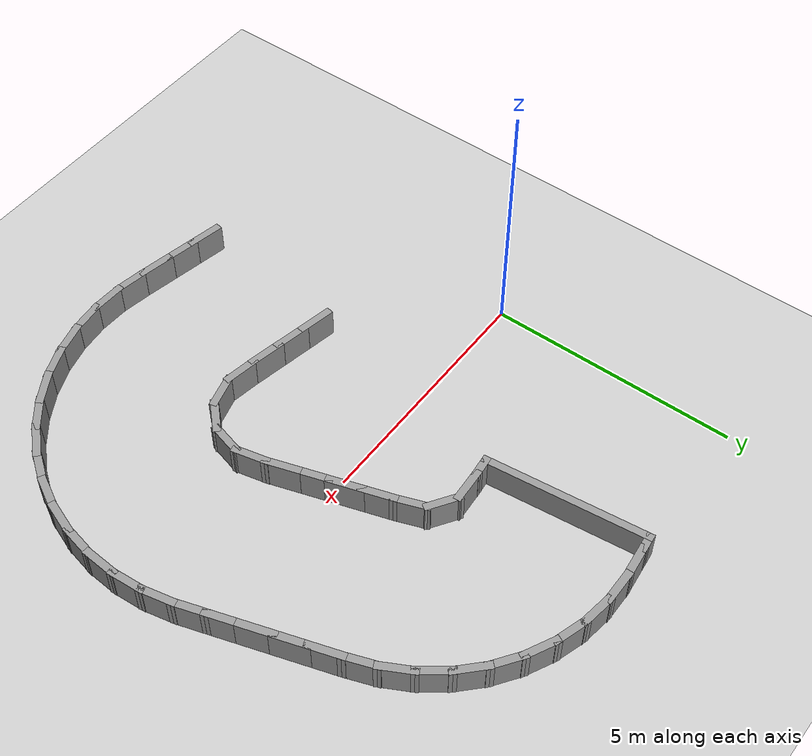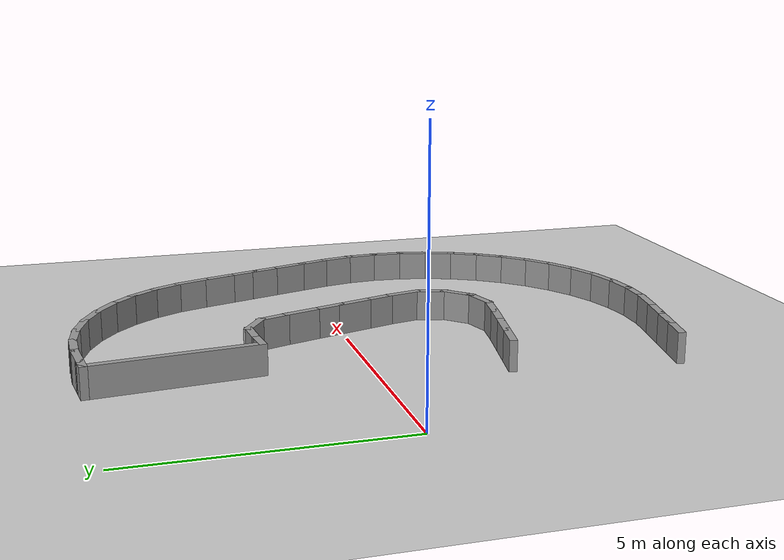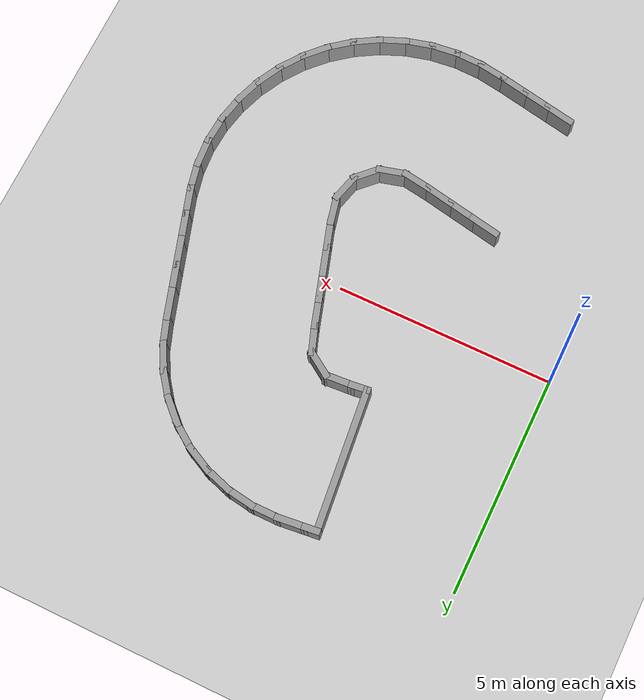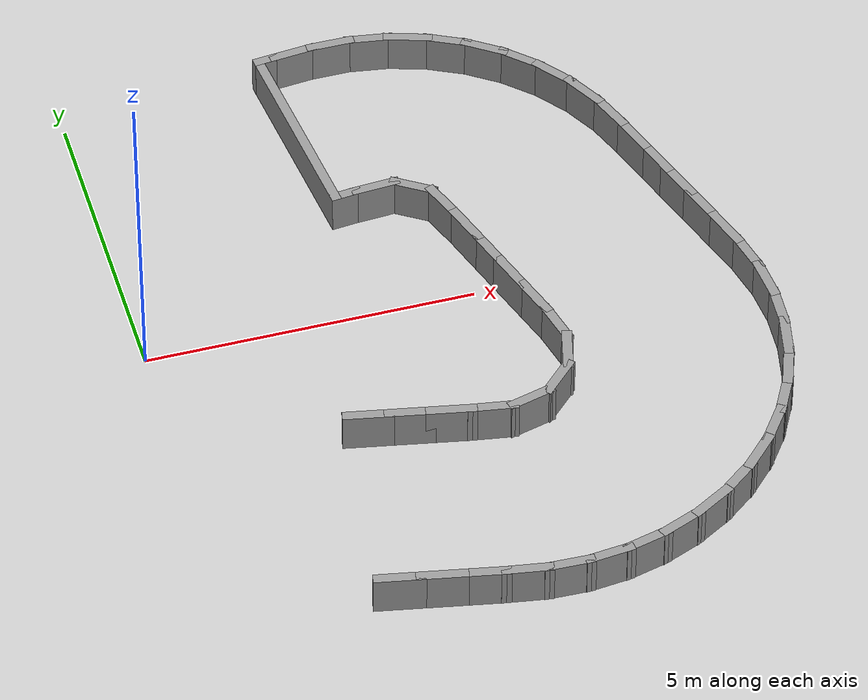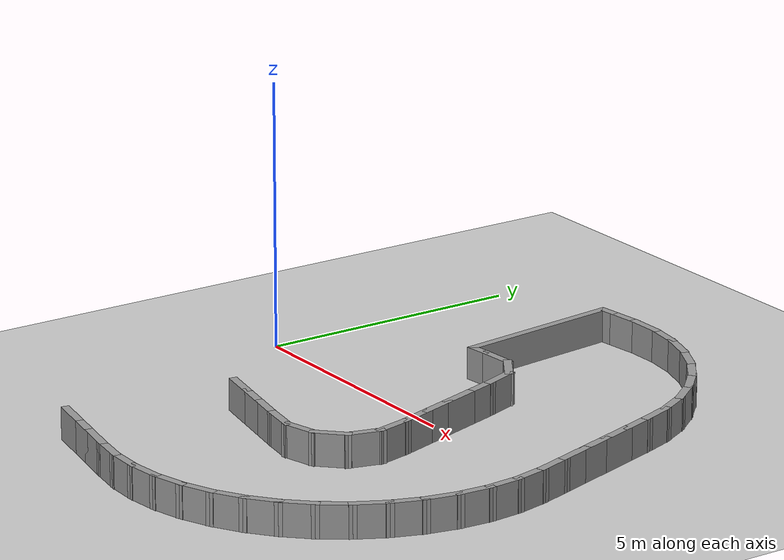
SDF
<sdf version="1.7">
 <world name="default">
  <model name="ground_plane">
   <static>1</static>
   <link name="link">
    <collision name="collision">
     <geometry><plane><normal>0 0 1</normal><size>100 100</size></plane></geometry>
     <surface><friction><ode><mu>100</mu><mu2>50</mu2></ode></friction></surface>
    </collision>
    <visual name="visual">
     <cast_shadows>0</cast_shadows>
     <geometry><plane><normal>0 0 1</normal><size>100 100</size></plane></geometry>
     <material>
      <script><uri>file://media/materials/scripts/gazebo.material</uri><name>Gazebo/Grey</name></script>
     </material>
    </visual>
   </link>
  </model>
  <model name="rand_turn_03">
   <link name="Wall_25">
    <collision name="Wall_25_Collision">
     <geometry><box><size>0.7500 0.1500 0.6000</size></box></geometry>
     <pose>0 0 0.3000 0 -0 0</pose>
    </collision>
    <visual name="Wall_25_Visual">
     <pose>0 0 0.3000 0 -0 0</pose>
     <geometry><box><size>0.7500 0.1500 0.6000</size></box></geometry>
     <material>
      <script><uri>file://media/materials/scripts/gazebo.material</uri><name>Gazebo/Grey</name></script>
      <ambient>1 1 1 1</ambient>
     </material>
    </visual>
    <pose>2.6894 -2.4760 0 0 -0 -0.19083</pose>
   </link>
   <link name="Wall_26">
    <collision name="Wall_26_Collision">
     <geometry><box><size>0.7500 0.1500 0.6000</size></box></geometry>
     <pose>0 0 0.3000 0 -0 0</pose>
    </collision>
    <visual name="Wall_26_Visual">
     <pose>0 0 0.3000 0 -0 0</pose>
     <geometry><box><size>0.7500 0.1500 0.6000</size></box></geometry>
     <material>
      <script><uri>file://media/materials/scripts/gazebo.material</uri><name>Gazebo/Grey</name></script>
      <ambient>1 1 1 1</ambient>
     </material>
    </visual>
    <pose>3.2785 -2.5898 0 0 -0 -0.19083</pose>
   </link>
   <link name="Wall_27">
    <collision name="Wall_27_Collision">
     <geometry><box><size>0.7500 0.1500 0.6000</size></box></geometry>
     <pose>0 0 0.3000 0 -0 0</pose>
    </collision>
    <visual name="Wall_27_Visual">
     <pose>0 0 0.3000 0 -0 0</pose>
     <geometry><box><size>0.7500 0.1500 0.6000</size></box></geometry>
     <material>
      <script><uri>file://media/materials/scripts/gazebo.material</uri><name>Gazebo/Grey</name></script>
      <ambient>1 1 1 1</ambient>
     </material>
    </visual>
    <pose>3.8676 -2.7036 0 0 -0 -0.19083</pose>
   </link>
   <link name="Wall_28">
    <collision name="Wall_28_Collision">
     <geometry><box><size>0.7491 0.1500 0.6000</size></box></geometry>
     <pose>0 0 0.3000 0 -0 0</pose>
    </collision>
    <visual name="Wall_28_Visual">
     <pose>0 0 0.3000 0 -0 0</pose>
     <geometry><box><size>0.7491 0.1500 0.6000</size></box></geometry>
     <material>
      <script><uri>file://media/materials/scripts/gazebo.material</uri><name>Gazebo/Grey</name></script>
      <ambient>1 1 1 1</ambient>
     </material>
    </visual>
    <pose>4.4579 -2.8079 0 0 -0 -0.15883</pose>
   </link>
   <link name="Wall_29">
    <collision name="Wall_29_Collision">
     <geometry><box><size>0.7430 0.1500 0.6000</size></box></geometry>
     <pose>0 0 0.3000 0 -0 0</pose>
    </collision>
    <visual name="Wall_29_Visual">
     <pose>0 0 0.3000 0 -0 0</pose>
     <geometry><box><size>0.7430 0.1500 0.6000</size></box></geometry>
     <material>
      <script><uri>file://media/materials/scripts/gazebo.material</uri><name>Gazebo/Grey</name></script>
      <ambient>1 1 1 1</ambient>
     </material>
    </visual>
    <pose>5.0404 -2.7796 0 0 -0 0.25798</pose>
   </link>
   <link name="Wall_30">
    <collision name="Wall_30_Collision">
     <geometry><box><size>0.7430 0.1500 0.6000</size></box></geometry>
     <pose>0 0 0.3000 0 -0 0</pose>
    </collision>
    <visual name="Wall_30_Visual">
     <pose>0 0 0.3000 0 -0 0</pose>
     <geometry><box><size>0.7430 0.1500 0.6000</size></box></geometry>
     <material>
      <script><uri>file://media/materials/scripts/gazebo.material</uri><name>Gazebo/Grey</name></script>
      <ambient>1 1 1 1</ambient>
     </material>
    </visual>
    <pose>5.5365 -2.4941 0 0 -0 0.78651</pose>
   </link>
   <link name="Wall_31">
    <collision name="Wall_31_Collision">
     <geometry><box><size>0.7430 0.1500 0.6000</size></box></geometry>
     <pose>0 0 0.3000 0 -0 0</pose>
    </collision>
    <visual name="Wall_31_Visual">
     <pose>0 0 0.3000 0 -0 0</pose>
     <geometry><box><size>0.7430 0.1500 0.6000</size></box></geometry>
     <material>
      <script><uri>file://media/materials/scripts/gazebo.material</uri><name>Gazebo/Grey</name></script>
      <ambient>1 1 1 1</ambient>
     </material>
    </visual>
    <pose>5.8209 -1.9973 0 0 -0 1.31540</pose>
   </link>
   <link name="Wall_32">
    <collision name="Wall_32_Collision">
     <geometry><box><size>0.7471 0.1500 0.6000</size></box></geometry>
     <pose>0 0 0.3000 0 -0 0</pose>
    </collision>
    <visual name="Wall_32_Visual">
     <pose>0 0 0.3000 0 -0 0</pose>
     <geometry><box><size>0.7471 0.1500 0.6000</size></box></geometry>
     <material>
      <script><uri>file://media/materials/scripts/gazebo.material</uri><name>Gazebo/Grey</name></script>
      <ambient>1 1 1 1</ambient>
     </material>
    </visual>
    <pose>5.8299 -1.4192 0 0 -0 1.79332</pose>
   </link>
   <link name="Wall_33">
    <collision name="Wall_33_Collision">
     <geometry><box><size>0.7500 0.1500 0.6000</size></box></geometry>
     <pose>0 0 0.3000 0 -0 0</pose>
    </collision>
    <visual name="Wall_33_Visual">
     <pose>0 0 0.3000 0 -0 0</pose>
     <geometry><box><size>0.7500 0.1500 0.6000</size></box></geometry>
     <material>
      <script><uri>file://media/materials/scripts/gazebo.material</uri><name>Gazebo/Grey</name></script>
      <ambient>1 1 1 1</ambient>
     </material>
    </visual>
    <pose>5.6738 -0.8419 0 0 -0 1.87625</pose>
   </link>
   <link name="Wall_34">
    <collision name="Wall_34_Collision">
     <geometry><box><size>0.7500 0.1500 0.6000</size></box></geometry>
     <pose>0 0 0.3000 0 -0 0</pose>
    </collision>
    <visual name="Wall_34_Visual">
     <pose>0 0 0.3000 0 -0 0</pose>
     <geometry><box><size>0.7500 0.1500 0.6000</size></box></geometry>
     <material>
      <script><uri>file://media/materials/scripts/gazebo.material</uri><name>Gazebo/Grey</name></script>
      <ambient>1 1 1 1</ambient>
     </material>
    </visual>
    <pose>5.4933 -0.2697 0 0 -0 1.87625</pose>
   </link>
   <link name="Wall_35">
    <collision name="Wall_35_Collision">
     <geometry><box><size>0.7500 0.1500 0.6000</size></box></geometry>
     <pose>0 0 0.3000 0 -0 0</pose>
    </collision>
    <visual name="Wall_35_Visual">
     <pose>0 0 0.3000 0 -0 0</pose>
     <geometry><box><size>0.7500 0.1500 0.6000</size></box></geometry>
     <material>
      <script><uri>file://media/materials/scripts/gazebo.material</uri><name>Gazebo/Grey</name></script>
      <ambient>1 1 1 1</ambient>
     </material>
    </visual>
    <pose>5.3129 0.3026 0 0 -0 1.87625</pose>
   </link>
   <link name="Wall_36">
    <collision name="Wall_36_Collision">
     <geometry><box><size>0.7500 0.1500 0.6000</size></box></geometry>
     <pose>0 0 0.3000 0 -0 0</pose>
    </collision>
    <visual name="Wall_36_Visual">
     <pose>0 0 0.3000 0 -0 0</pose>
     <geometry><box><size>0.7500 0.1500 0.6000</size></box></geometry>
     <material>
      <script><uri>file://media/materials/scripts/gazebo.material</uri><name>Gazebo/Grey</name></script>
      <ambient>1 1 1 1</ambient>
     </material>
    </visual>
    <pose>5.1324 0.8748 0 0 -0 1.87625</pose>
   </link>
   <link name="Wall_37">
    <collision name="Wall_37_Collision">
     <geometry><box><size>0.7484 0.1500 0.6000</size></box></geometry>
     <pose>0 0 0.3000 0 -0 0</pose>
    </collision>
    <visual name="Wall_37_Visual">
     <pose>0 0 0.3000 0 -0 0</pose>
     <geometry><box><size>0.7484 0.1500 0.6000</size></box></geometry>
     <material>
      <script><uri>file://media/materials/scripts/gazebo.material</uri><name>Gazebo/Grey</name></script>
      <ambient>1 1 1 1</ambient>
     </material>
    </visual>
    <pose>4.9410 1.4425 0 0 -0 1.91591</pose>
   </link>
   <link name="Wall_38">
    <collision name="Wall_38_Collision">
     <geometry><box><size>0.7322 0.1500 0.6000</size></box></geometry>
     <pose>0 0 0.3000 0 -0 0</pose>
    </collision>
    <visual name="Wall_38_Visual">
     <pose>0 0 0.3000 0 -0 0</pose>
     <geometry><box><size>0.7322 0.1500 0.6000</size></box></geometry>
     <material>
      <script><uri>file://media/materials/scripts/gazebo.material</uri><name>Gazebo/Grey</name></script>
      <ambient>1 1 1 1</ambient>
     </material>
    </visual>
    <pose>4.5966 1.8840 0 0 -0 2.55973</pose>
   </link>
   <link name="Wall_39">
    <collision name="Wall_39_Collision">
     <geometry><box><size>0.7482 0.1500 0.6000</size></box></geometry>
     <pose>0 0 0.3000 0 -0 0</pose>
    </collision>
    <visual name="Wall_39_Visual">
     <pose>0 0 0.3000 0 -0 0</pose>
     <geometry><box><size>0.7482 0.1500 0.6000</size></box></geometry>
     <material>
      <script><uri>file://media/materials/scripts/gazebo.material</uri><name>Gazebo/Grey</name></script>
      <ambient>1 1 1 1</ambient>
     </material>
    </visual>
    <pose>4.0550 2.0238 0 0 -0 -3.07399</pose>
   </link>
   <link name="Wall_40">
    <collision name="Wall_40_Collision">
     <geometry><box><size>0.4891 0.1500 0.6000</size></box></geometry>
     <pose>0 0 0.3000 0 -0 0</pose>
    </collision>
    <visual name="Wall_40_Visual">
     <pose>0 0 0.3000 0 -0 0</pose>
     <geometry><box><size>0.4891 0.1500 0.6000</size></box></geometry>
     <material>
      <script><uri>file://media/materials/scripts/gazebo.material</uri><name>Gazebo/Grey</name></script>
      <ambient>1 1 1 1</ambient>
     </material>
    </visual>
    <pose>3.5880 1.9851 0 0 -0 -3.03265</pose>
   </link>
   <link name="Wall_66">
    <collision name="Wall_66_Collision">
     <geometry><box><size>0.7500 0.1500 0.6000</size></box></geometry>
     <pose>0 0 0.3000 0 -0 0</pose>
    </collision>
    <visual name="Wall_66_Visual">
     <pose>0 0 0.3000 0 -0 0</pose>
     <geometry><box><size>0.7500 0.1500 0.6000</size></box></geometry>
     <material>
      <script><uri>file://media/materials/scripts/gazebo.material</uri><name>Gazebo/Grey</name></script>
      <ambient>1 1 1 1</ambient>
     </material>
    </visual>
    <pose>2.2685 -5.6217 0 0 -0 -0.19083</pose>
   </link>
   <link name="Wall_67">
    <collision name="Wall_67_Collision">
     <geometry><box><size>0.7500 0.1500 0.6000</size></box></geometry>
     <pose>0 0 0.3000 0 -0 0</pose>
    </collision>
    <visual name="Wall_67_Visual">
     <pose>0 0 0.3000 0 -0 0</pose>
     <geometry><box><size>0.7500 0.1500 0.6000</size></box></geometry>
     <material>
      <script><uri>file://media/materials/scripts/gazebo.material</uri><name>Gazebo/Grey</name></script>
      <ambient>1 1 1 1</ambient>
     </material>
    </visual>
    <pose>2.8576 -5.7355 0 0 -0 -0.19083</pose>
   </link>
   <link name="Wall_68">
    <collision name="Wall_68_Collision">
     <geometry><box><size>0.7500 0.1500 0.6000</size></box></geometry>
     <pose>0 0 0.3000 0 -0 0</pose>
    </collision>
    <visual name="Wall_68_Visual">
     <pose>0 0 0.3000 0 -0 0</pose>
     <geometry><box><size>0.7500 0.1500 0.6000</size></box></geometry>
     <material>
      <script><uri>file://media/materials/scripts/gazebo.material</uri><name>Gazebo/Grey</name></script>
      <ambient>1 1 1 1</ambient>
     </material>
    </visual>
    <pose>3.4467 -5.8493 0 0 -0 -0.19083</pose>
   </link>
   <link name="Wall_69">
    <collision name="Wall_69_Collision">
     <geometry><box><size>0.7497 0.1500 0.6000</size></box></geometry>
     <pose>0 0 0.3000 0 -0 0</pose>
    </collision>
    <visual name="Wall_69_Visual">
     <pose>0 0 0.3000 0 -0 0</pose>
     <geometry><box><size>0.7497 0.1500 0.6000</size></box></geometry>
     <material>
      <script><uri>file://media/materials/scripts/gazebo.material</uri><name>Gazebo/Grey</name></script>
      <ambient>1 1 1 1</ambient>
     </material>
    </visual>
    <pose>4.0373 -5.9539 0 0 -0 -0.15983</pose>
   </link>
   <link name="Wall_70">
    <collision name="Wall_70_Collision">
     <geometry><box><size>0.7495 0.1500 0.6000</size></box></geometry>
     <pose>0 0 0.3000 0 -0 0</pose>
    </collision>
    <visual name="Wall_70_Visual">
     <pose>0 0 0.3000 0 -0 0</pose>
     <geometry><box><size>0.7495 0.1500 0.6000</size></box></geometry>
     <material>
      <script><uri>file://media/materials/scripts/gazebo.material</uri><name>Gazebo/Grey</name></script>
      <ambient>1 1 1 1</ambient>
     </material>
    </visual>
    <pose>4.6329 -6.0107 0 0 -0 -0.03020</pose>
   </link>
   <link name="Wall_71">
    <collision name="Wall_71_Collision">
     <geometry><box><size>0.7495 0.1500 0.6000</size></box></geometry>
     <pose>0 0 0.3000 0 -0 0</pose>
    </collision>
    <visual name="Wall_71_Visual">
     <pose>0 0 0.3000 0 -0 0</pose>
     <geometry><box><size>0.7495 0.1500 0.6000</size></box></geometry>
     <material>
      <script><uri>file://media/materials/scripts/gazebo.material</uri><name>Gazebo/Grey</name></script>
      <ambient>1 1 1 1</ambient>
     </material>
    </visual>
    <pose>5.2304 -5.9872 0 0 -0 0.10882</pose>
   </link>
   <link name="Wall_72">
    <collision name="Wall_72_Collision">
     <geometry><box><size>0.7495 0.1500 0.6000</size></box></geometry>
     <pose>0 0 0.3000 0 -0 0</pose>
    </collision>
    <visual name="Wall_72_Visual">
     <pose>0 0 0.3000 0 -0 0</pose>
     <geometry><box><size>0.7495 0.1500 0.6000</size></box></geometry>
     <material>
      <script><uri>file://media/materials/scripts/gazebo.material</uri><name>Gazebo/Grey</name></script>
      <ambient>1 1 1 1</ambient>
     </material>
    </visual>
    <pose>5.8189 -5.8807 0 0 -0 0.24928</pose>
   </link>
   <link name="Wall_73">
    <collision name="Wall_73_Collision">
     <geometry><box><size>0.7495 0.1500 0.6000</size></box></geometry>
     <pose>0 0 0.3000 0 -0 0</pose>
    </collision>
    <visual name="Wall_73_Visual">
     <pose>0 0 0.3000 0 -0 0</pose>
     <geometry><box><size>0.7495 0.1500 0.6000</size></box></geometry>
     <material>
      <script><uri>file://media/materials/scripts/gazebo.material</uri><name>Gazebo/Grey</name></script>
      <ambient>1 1 1 1</ambient>
     </material>
    </visual>
    <pose>6.3868 -5.6931 0 0 -0 0.38890</pose>
   </link>
   <link name="Wall_74">
    <collision name="Wall_74_Collision">
     <geometry><box><size>0.7494 0.1500 0.6000</size></box></geometry>
     <pose>0 0 0.3000 0 -0 0</pose>
    </collision>
    <visual name="Wall_74_Visual">
     <pose>0 0 0.3000 0 -0 0</pose>
     <geometry><box><size>0.7494 0.1500 0.6000</size></box></geometry>
     <material>
      <script><uri>file://media/materials/scripts/gazebo.material</uri><name>Gazebo/Grey</name></script>
      <ambient>1 1 1 1</ambient>
     </material>
    </visual>
    <pose>6.9230 -5.4284 0 0 -0 0.52792</pose>
   </link>
   <link name="Wall_75">
    <collision name="Wall_75_Collision">
     <geometry><box><size>0.7495 0.1500 0.6000</size></box></geometry>
     <pose>0 0 0.3000 0 -0 0</pose>
    </collision>
    <visual name="Wall_75_Visual">
     <pose>0 0 0.3000 0 -0 0</pose>
     <geometry><box><size>0.7495 0.1500 0.6000</size></box></geometry>
     <material>
      <script><uri>file://media/materials/scripts/gazebo.material</uri><name>Gazebo/Grey</name></script>
      <ambient>1 1 1 1</ambient>
     </material>
    </visual>
    <pose>7.4175 -5.0920 0 0 -0 0.66695</pose>
   </link>
   <link name="Wall_76">
    <collision name="Wall_76_Collision">
     <geometry><box><size>0.7495 0.1500 0.6000</size></box></geometry>
     <pose>0 0 0.3000 0 -0 0</pose>
    </collision>
    <visual name="Wall_76_Visual">
     <pose>0 0 0.3000 0 -0 0</pose>
     <geometry><box><size>0.7495 0.1500 0.6000</size></box></geometry>
     <material>
      <script><uri>file://media/materials/scripts/gazebo.material</uri><name>Gazebo/Grey</name></script>
      <ambient>1 1 1 1</ambient>
     </material>
    </visual>
    <pose>7.8605 -4.6904 0 0 -0 0.80597</pose>
   </link>
   <link name="Wall_77">
    <collision name="Wall_77_Collision">
     <geometry><box><size>0.7495 0.1500 0.6000</size></box></geometry>
     <pose>0 0 0.3000 0 -0 0</pose>
    </collision>
    <visual name="Wall_77_Visual">
     <pose>0 0 0.3000 0 -0 0</pose>
     <geometry><box><size>0.7495 0.1500 0.6000</size></box></geometry>
     <material>
      <script><uri>file://media/materials/scripts/gazebo.material</uri><name>Gazebo/Grey</name></script>
      <ambient>1 1 1 1</ambient>
     </material>
    </visual>
    <pose>8.2432 -4.2308 0 0 -0 0.94686</pose>
   </link>
   <link name="Wall_78">
    <collision name="Wall_78_Collision">
     <geometry><box><size>0.7495 0.1500 0.6000</size></box></geometry>
     <pose>0 0 0.3000 0 -0 0</pose>
    </collision>
    <visual name="Wall_78_Visual">
     <pose>0 0 0.3000 0 -0 0</pose>
     <geometry><box><size>0.7495 0.1500 0.6000</size></box></geometry>
     <material>
      <script><uri>file://media/materials/scripts/gazebo.material</uri><name>Gazebo/Grey</name></script>
      <ambient>1 1 1 1</ambient>
     </material>
    </visual>
    <pose>8.5580 -3.7223 0 0 -0 1.08604</pose>
   </link>
   <link name="Wall_79">
    <collision name="Wall_79_Collision">
     <geometry><box><size>0.7494 0.1500 0.6000</size></box></geometry>
     <pose>0 0 0.3000 0 -0 0</pose>
    </collision>
    <visual name="Wall_79_Visual">
     <pose>0 0 0.3000 0 -0 0</pose>
     <geometry><box><size>0.7494 0.1500 0.6000</size></box></geometry>
     <material>
      <script><uri>file://media/materials/scripts/gazebo.material</uri><name>Gazebo/Grey</name></script>
      <ambient>1 1 1 1</ambient>
     </material>
    </visual>
    <pose>8.7992 -3.1751 0 0 -0 1.22507</pose>
   </link>
   <link name="Wall_80">
    <collision name="Wall_80_Collision">
     <geometry><box><size>0.7495 0.1500 0.6000</size></box></geometry>
     <pose>0 0 0.3000 0 -0 0</pose>
    </collision>
    <visual name="Wall_80_Visual">
     <pose>0 0 0.3000 0 -0 0</pose>
     <geometry><box><size>0.7495 0.1500 0.6000</size></box></geometry>
     <material>
      <script><uri>file://media/materials/scripts/gazebo.material</uri><name>Gazebo/Grey</name></script>
      <ambient>1 1 1 1</ambient>
     </material>
    </visual>
    <pose>8.9623 -2.5998 0 0 -0 1.36409</pose>
   </link>
   <link name="Wall_81">
    <collision name="Wall_81_Collision">
     <geometry><box><size>0.7495 0.1500 0.6000</size></box></geometry>
     <pose>0 0 0.3000 0 -0 0</pose>
    </collision>
    <visual name="Wall_81_Visual">
     <pose>0 0 0.3000 0 -0 0</pose>
     <geometry><box><size>0.7495 0.1500 0.6000</size></box></geometry>
     <material>
      <script><uri>file://media/materials/scripts/gazebo.material</uri><name>Gazebo/Grey</name></script>
      <ambient>1 1 1 1</ambient>
     </material>
    </visual>
    <pose>9.0440 -2.0074 0 0 -0 1.50338</pose>
   </link>
   <link name="Wall_82">
    <collision name="Wall_82_Collision">
     <geometry><box><size>0.7495 0.1500 0.6000</size></box></geometry>
     <pose>0 0 0.3000 0 -0 0</pose>
    </collision>
    <visual name="Wall_82_Visual">
     <pose>0 0 0.3000 0 -0 0</pose>
     <geometry><box><size>0.7495 0.1500 0.6000</size></box></geometry>
     <material>
      <script><uri>file://media/materials/scripts/gazebo.material</uri><name>Gazebo/Grey</name></script>
      <ambient>1 1 1 1</ambient>
     </material>
    </visual>
    <pose>9.0423 -1.4093 0 0 -0 1.64417</pose>
   </link>
   <link name="Wall_83">
    <collision name="Wall_83_Collision">
     <geometry><box><size>0.7495 0.1500 0.6000</size></box></geometry>
     <pose>0 0 0.3000 0 -0 0</pose>
    </collision>
    <visual name="Wall_83_Visual">
     <pose>0 0 0.3000 0 -0 0</pose>
     <geometry><box><size>0.7495 0.1500 0.6000</size></box></geometry>
     <material>
      <script><uri>file://media/materials/scripts/gazebo.material</uri><name>Gazebo/Grey</name></script>
      <ambient>1 1 1 1</ambient>
     </material>
    </visual>
    <pose>8.9571 -0.8174 0 0 -0 1.78306</pose>
   </link>
   <link name="Wall_84">
    <collision name="Wall_84_Collision">
     <geometry><box><size>0.7500 0.1500 0.6000</size></box></geometry>
     <pose>0 0 0.3000 0 -0 0</pose>
    </collision>
    <visual name="Wall_84_Visual">
     <pose>0 0 0.3000 0 -0 0</pose>
     <geometry><box><size>0.7500 0.1500 0.6000</size></box></geometry>
     <material>
      <script><uri>file://media/materials/scripts/gazebo.material</uri><name>Gazebo/Grey</name></script>
      <ambient>1 1 1 1</ambient>
     </material>
    </visual>
    <pose>8.8046 -0.2380 0 0 -0 1.87330</pose>
   </link>
   <link name="Wall_85">
    <collision name="Wall_85_Collision">
     <geometry><box><size>0.7500 0.1500 0.6000</size></box></geometry>
     <pose>0 0 0.3000 0 -0 0</pose>
    </collision>
    <visual name="Wall_85_Visual">
     <pose>0 0 0.3000 0 -0 0</pose>
     <geometry><box><size>0.7500 0.1500 0.6000</size></box></geometry>
     <material>
      <script><uri>file://media/materials/scripts/gazebo.material</uri><name>Gazebo/Grey</name></script>
      <ambient>1 1 1 1</ambient>
     </material>
    </visual>
    <pose>8.6250 0.3345 0 0 -0 1.87625</pose>
   </link>
   <link name="Wall_86">
    <collision name="Wall_86_Collision">
     <geometry><box><size>0.7500 0.1500 0.6000</size></box></geometry>
     <pose>0 0 0.3000 0 -0 0</pose>
    </collision>
    <visual name="Wall_86_Visual">
     <pose>0 0 0.3000 0 -0 0</pose>
     <geometry><box><size>0.7500 0.1500 0.6000</size></box></geometry>
     <material>
      <script><uri>file://media/materials/scripts/gazebo.material</uri><name>Gazebo/Grey</name></script>
      <ambient>1 1 1 1</ambient>
     </material>
    </visual>
    <pose>8.4446 0.9067 0 0 -0 1.87625</pose>
   </link>
   <link name="Wall_87">
    <collision name="Wall_87_Collision">
     <geometry><box><size>0.7500 0.1500 0.6000</size></box></geometry>
     <pose>0 0 0.3000 0 -0 0</pose>
    </collision>
    <visual name="Wall_87_Visual">
     <pose>0 0 0.3000 0 -0 0</pose>
     <geometry><box><size>0.7500 0.1500 0.6000</size></box></geometry>
     <material>
      <script><uri>file://media/materials/scripts/gazebo.material</uri><name>Gazebo/Grey</name></script>
      <ambient>1 1 1 1</ambient>
     </material>
    </visual>
    <pose>8.2642 1.4789 0 0 -0 1.87625</pose>
   </link>
   <link name="Wall_88">
    <collision name="Wall_88_Collision">
     <geometry><box><size>0.7500 0.1500 0.6000</size></box></geometry>
     <pose>0 0 0.3000 0 -0 0</pose>
    </collision>
    <visual name="Wall_88_Visual">
     <pose>0 0 0.3000 0 -0 0</pose>
     <geometry><box><size>0.7500 0.1500 0.6000</size></box></geometry>
     <material>
      <script><uri>file://media/materials/scripts/gazebo.material</uri><name>Gazebo/Grey</name></script>
      <ambient>1 1 1 1</ambient>
     </material>
    </visual>
    <pose>8.0837 2.0512 0 0 -0 1.87625</pose>
   </link>
   <link name="Wall_89">
    <collision name="Wall_89_Collision">
     <geometry><box><size>0.7496 0.1500 0.6000</size></box></geometry>
     <pose>0 0 0.3000 0 -0 0</pose>
    </collision>
    <visual name="Wall_89_Visual">
     <pose>0 0 0.3000 0 -0 0</pose>
     <geometry><box><size>0.7496 0.1500 0.6000</size></box></geometry>
     <material>
      <script><uri>file://media/materials/scripts/gazebo.material</uri><name>Gazebo/Grey</name></script>
      <ambient>1 1 1 1</ambient>
     </material>
    </visual>
    <pose>7.8922 2.6194 0 0 -0 1.91535</pose>
   </link>
   <link name="Wall_90">
    <collision name="Wall_90_Collision">
     <geometry><box><size>0.7494 0.1500 0.6000</size></box></geometry>
     <pose>0 0 0.3000 0 -0 0</pose>
    </collision>
    <visual name="Wall_90_Visual">
     <pose>0 0 0.3000 0 -0 0</pose>
     <geometry><box><size>0.7494 0.1500 0.6000</size></box></geometry>
     <material>
      <script><uri>file://media/materials/scripts/gazebo.material</uri><name>Gazebo/Grey</name></script>
      <ambient>1 1 1 1</ambient>
     </material>
    </visual>
    <pose>7.6501 3.1661 0 0 -0 2.06009</pose>
   </link>
   <link name="Wall_91">
    <collision name="Wall_91_Collision">
     <geometry><box><size>0.7494 0.1500 0.6000</size></box></geometry>
     <pose>0 0 0.3000 0 -0 0</pose>
    </collision>
    <visual name="Wall_91_Visual">
     <pose>0 0 0.3000 0 -0 0</pose>
     <geometry><box><size>0.7494 0.1500 0.6000</size></box></geometry>
     <material>
      <script><uri>file://media/materials/scripts/gazebo.material</uri><name>Gazebo/Grey</name></script>
      <ambient>1 1 1 1</ambient>
     </material>
    </visual>
    <pose>7.3287 3.6698 0 0 -0 2.21768</pose>
   </link>
   <link name="Wall_92">
    <collision name="Wall_92_Collision">
     <geometry><box><size>0.7493 0.1500 0.6000</size></box></geometry>
     <pose>0 0 0.3000 0 -0 0</pose>
    </collision>
    <visual name="Wall_92_Visual">
     <pose>0 0 0.3000 0 -0 0</pose>
     <geometry><box><size>0.7493 0.1500 0.6000</size></box></geometry>
     <material>
      <script><uri>file://media/materials/scripts/gazebo.material</uri><name>Gazebo/Grey</name></script>
      <ambient>1 1 1 1</ambient>
     </material>
    </visual>
    <pose>6.9332 4.1178 0 0 -0 2.37022</pose>
   </link>
   <link name="Wall_93">
    <collision name="Wall_93_Collision">
     <geometry><box><size>0.7494 0.1500 0.6000</size></box></geometry>
     <pose>0 0 0.3000 0 -0 0</pose>
    </collision>
    <visual name="Wall_93_Visual">
     <pose>0 0 0.3000 0 -0 0</pose>
     <geometry><box><size>0.7494 0.1500 0.6000</size></box></geometry>
     <material>
      <script><uri>file://media/materials/scripts/gazebo.material</uri><name>Gazebo/Grey</name></script>
      <ambient>1 1 1 1</ambient>
     </material>
    </visual>
    <pose>6.4735 4.4996 0 0 -0 2.52663</pose>
   </link>
   <link name="Wall_94">
    <collision name="Wall_94_Collision">
     <geometry><box><size>0.7493 0.1500 0.6000</size></box></geometry>
     <pose>0 0 0.3000 0 -0 0</pose>
    </collision>
    <visual name="Wall_94_Visual">
     <pose>0 0 0.3000 0 -0 0</pose>
     <geometry><box><size>0.7493 0.1500 0.6000</size></box></geometry>
     <material>
      <script><uri>file://media/materials/scripts/gazebo.material</uri><name>Gazebo/Grey</name></script>
      <ambient>1 1 1 1</ambient>
     </material>
    </visual>
    <pose>5.9604 4.8059 0 0 -0 2.68035</pose>
   </link>
   <link name="Wall_95">
    <collision name="Wall_95_Collision">
     <geometry><box><size>0.7494 0.1500 0.6000</size></box></geometry>
     <pose>0 0 0.3000 0 -0 0</pose>
    </collision>
    <visual name="Wall_95_Visual">
     <pose>0 0 0.3000 0 -0 0</pose>
     <geometry><box><size>0.7494 0.1500 0.6000</size></box></geometry>
     <material>
      <script><uri>file://media/materials/scripts/gazebo.material</uri><name>Gazebo/Grey</name></script>
      <ambient>1 1 1 1</ambient>
     </material>
    </visual>
    <pose>5.4063 5.0295 0 0 -0 2.83558</pose>
   </link>
   <link name="Wall_96">
    <collision name="Wall_96_Collision">
     <geometry><box><size>0.7493 0.1500 0.6000</size></box></geometry>
     <pose>0 0 0.3000 0 -0 0</pose>
    </collision>
    <visual name="Wall_96_Visual">
     <pose>0 0 0.3000 0 -0 0</pose>
     <geometry><box><size>0.7493 0.1500 0.6000</size></box></geometry>
     <material>
      <script><uri>file://media/materials/scripts/gazebo.material</uri><name>Gazebo/Grey</name></script>
      <ambient>1 1 1 1</ambient>
     </material>
    </visual>
    <pose>4.8243 5.1649 0 0 -0 2.99048</pose>
   </link>
   <link name="Wall_97">
    <collision name="Wall_97_Collision">
     <geometry><box><size>0.7494 0.1500 0.6000</size></box></geometry>
     <pose>0 0 0.3000 0 -0 0</pose>
    </collision>
    <visual name="Wall_97_Visual">
     <pose>0 0 0.3000 0 -0 0</pose>
     <geometry><box><size>0.7494 0.1500 0.6000</size></box></geometry>
     <material>
      <script><uri>file://media/materials/scripts/gazebo.material</uri><name>Gazebo/Grey</name></script>
      <ambient>1 1 1 1</ambient>
     </material>
    </visual>
    <pose>4.2284 5.2092 0 0 -0 -3.13866</pose>
   </link>
   <link name="Wall_98">
    <collision name="Wall_98_Collision">
     <geometry><box><size>0.7500 0.1500 0.6000</size></box></geometry>
     <pose>0 0 0.3000 0 -0 0</pose>
    </collision>
    <visual name="Wall_98_Visual">
     <pose>0 0 0.3000 0 -0 0</pose>
     <geometry><box><size>0.7500 0.1500 0.6000</size></box></geometry>
     <material>
      <script><uri>file://media/materials/scripts/gazebo.material</uri><name>Gazebo/Grey</name></script>
      <ambient>1 1 1 1</ambient>
     </material>
    </visual>
    <pose>3.6304 5.1764 0 0 -0 -3.03504</pose>
   </link>
   <link name="Wall_99">
    <collision name="Wall_99_Collision">
     <geometry><box><size>0.4087 0.1500 0.6000</size></box></geometry>
     <pose>0 0 0.3000 0 -0 0</pose>
    </collision>
    <visual name="Wall_99_Visual">
     <pose>0 0 0.3000 0 -0 0</pose>
     <geometry><box><size>0.4087 0.1500 0.6000</size></box></geometry>
     <material>
      <script><uri>file://media/materials/scripts/gazebo.material</uri><name>Gazebo/Grey</name></script>
      <ambient>1 1 1 1</ambient>
     </material>
    </visual>
    <pose>3.2035 5.1304 0 0 -0 -3.03265</pose>
   </link>
   <link name="Wall_101">
    <collision name="Wall_101_Collision">
     <geometry><box><size>3.3184 0.1500 0.6000</size></box></geometry>
     <pose>0 0 0.3000 0 -0 0</pose>
    </collision>
    <visual name="Wall_101_Visual">
     <pose>0 0 0.3000 0 -0 0</pose>
     <geometry><box><size>3.3184 0.1500 0.6000</size></box></geometry>
     <material>
      <script><uri>file://media/materials/scripts/gazebo.material</uri><name>Gazebo/Grey</name></script>
      <ambient>1 1 1 1</ambient>
     </material>
    </visual>
    <pose>3.2472 3.5415 0 0 -0 1.67973</pose>
   </link>
   <static>1</static>
  </model>
 </world>
</sdf>
